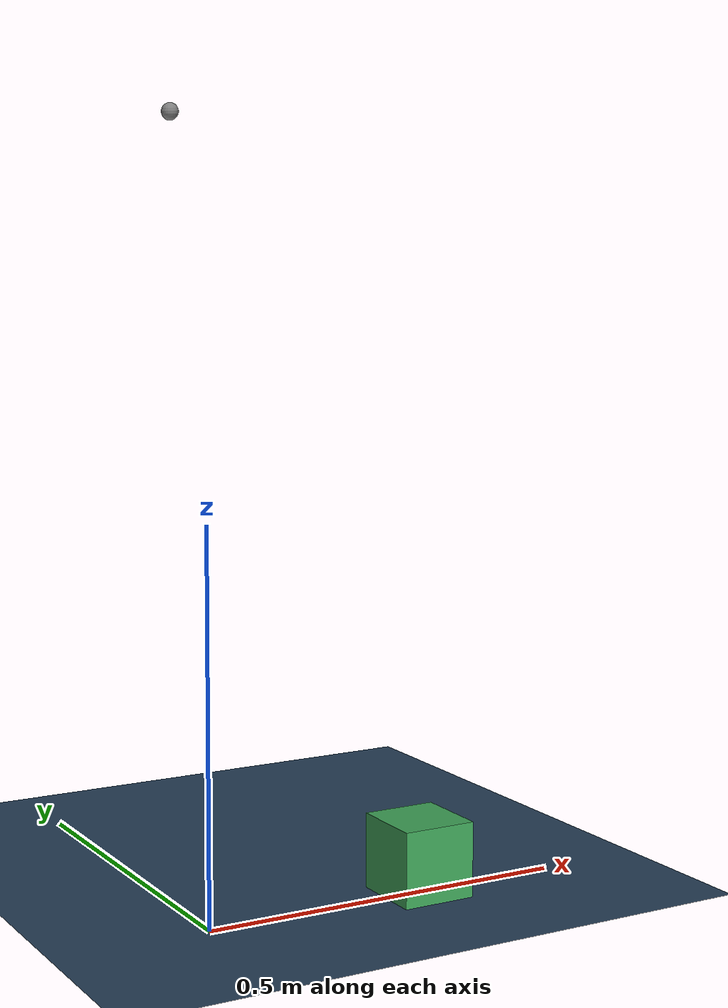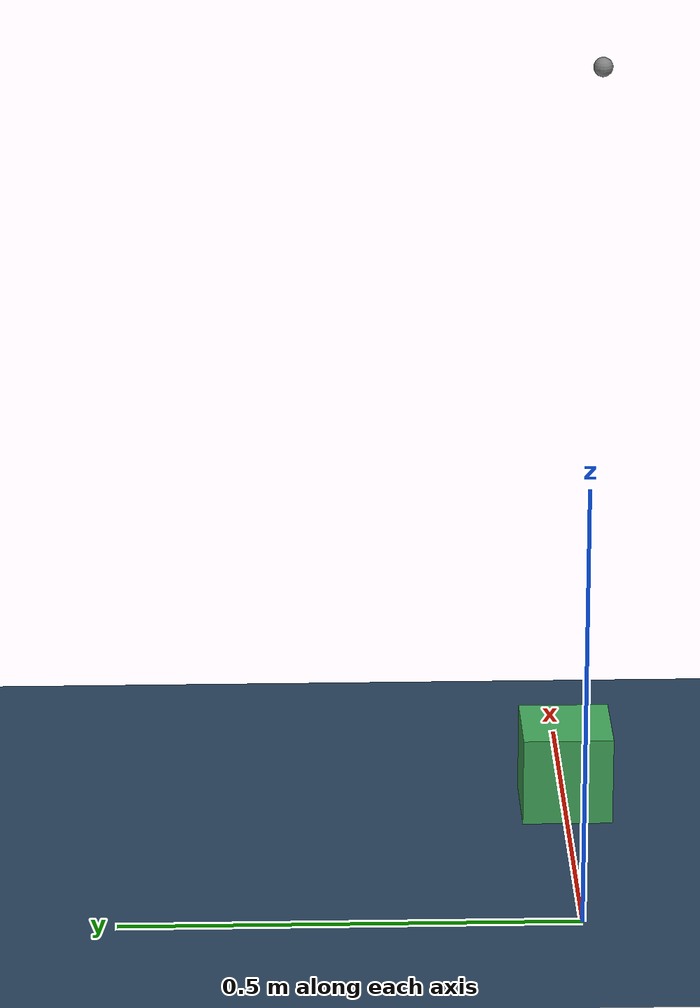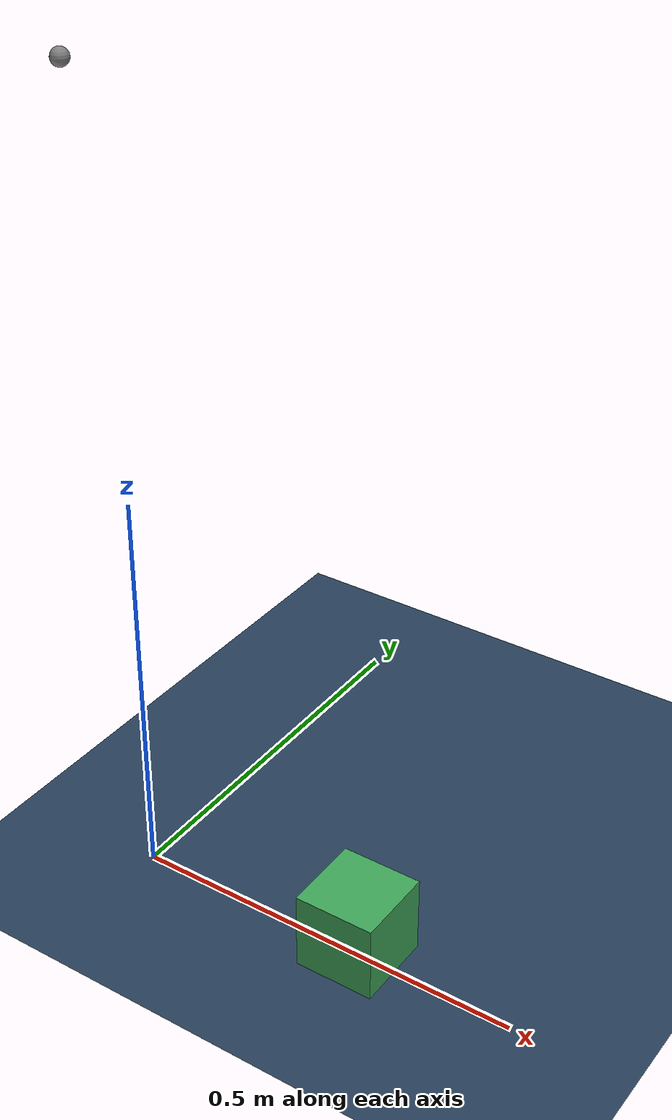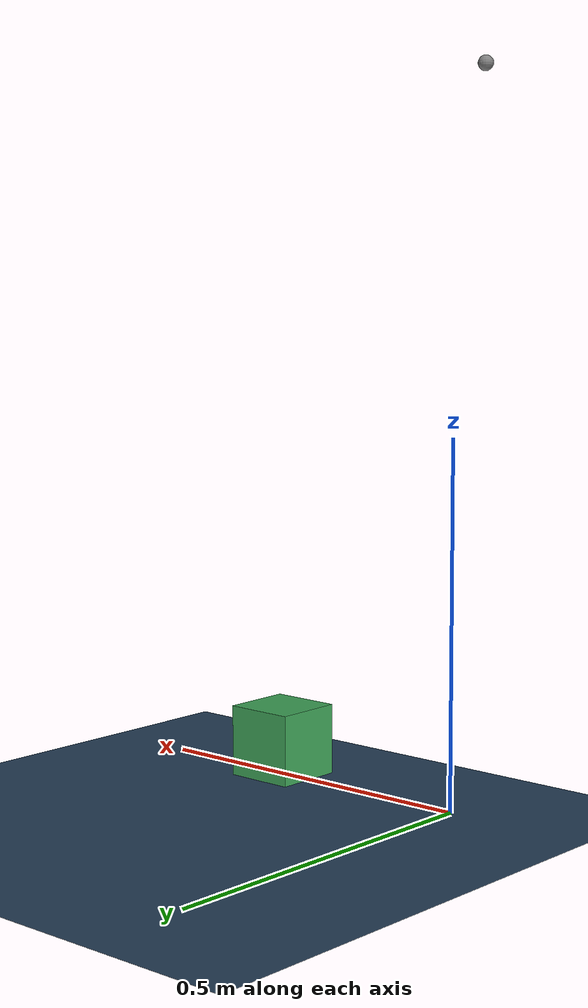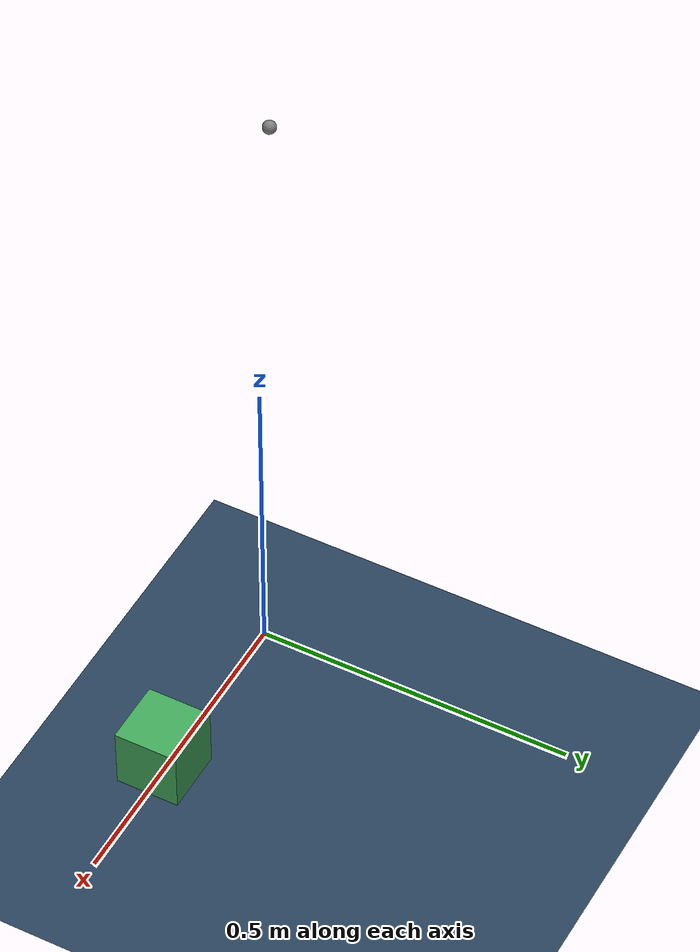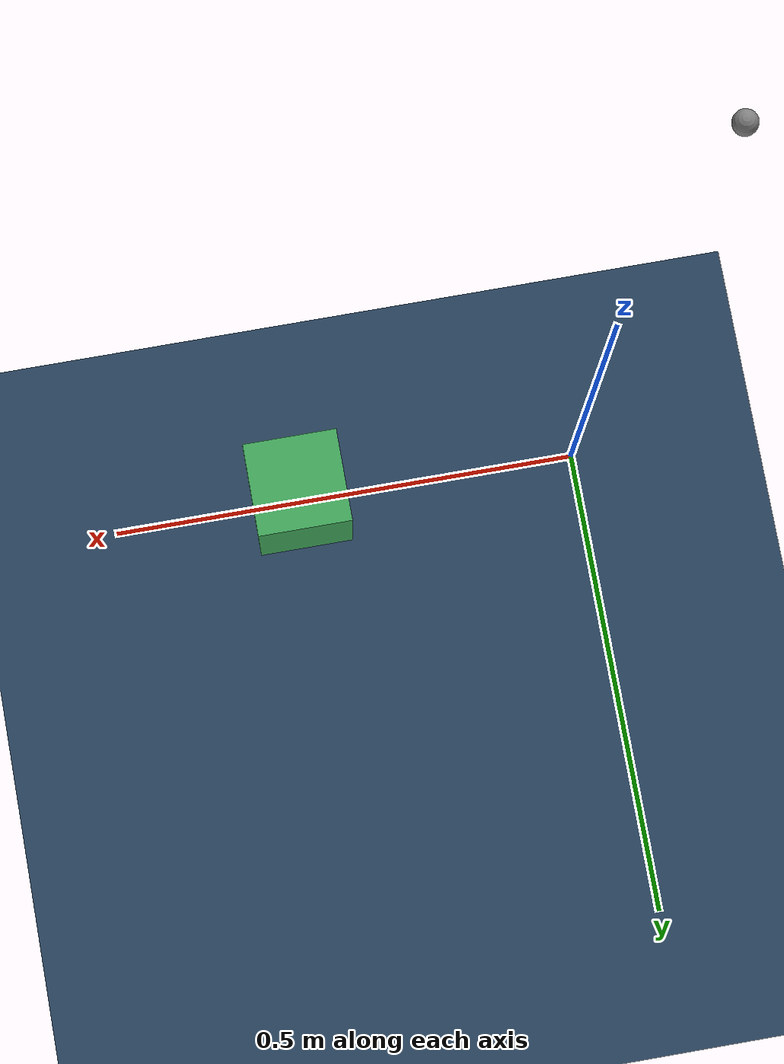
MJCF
<?xml version="1.0" encoding="utf-8"?>
<mujoco model="robobuddy_g1_29dof_freebase">
  <compiler angle="radian" meshdir="assets" autolimits="true" />
  <option timestep="0.002" integrator="Euler" iterations="100" ls_iterations="50" />
  <default>
    <default class="g1_motor">
      <joint armature="0.01" damping="0.05" frictionloss="0.2" />
    </default>
    <default class="g1_wrist_motor">
      <joint armature="0.01" damping="0.05" frictionloss="0.1" />
    </default>
    <default class="g1_collision">
      <geom group="3" rgba="0.35 0.55 0.75 0.35" />
    </default>
    <default class="g1_foot">
      <geom type="sphere" size="0.005" group="3" rgba="0.9 0.45 0.15 1" />
    </default>
    <default class="robobuddy_fixture">
      <geom group="4" rgba="0.85 0.25 0.25 0.55" contype="0" conaffinity="0" density="0" />
    </default>
  </default>
  <asset>
    <texture type="2d" name="robobuddy_ground" builtin="checker" mark="edge" rgb1="0.2 0.3 0.4" rgb2="0.1 0.2 0.3" markrgb="0.8 0.8 0.8" width="300" height="300" />
    <material name="robobuddy_ground" texture="robobuddy_ground" texuniform="true" texrepeat="5 5" reflectance="0.2" />
    <mesh name="head_link" file="head_link.STL" />
    <mesh name="left_ankle_pitch_link" file="left_ankle_pitch_link.STL" />
    <mesh name="left_elbow_link" file="left_elbow_link.STL" />
    <mesh name="left_hip_pitch_link" file="left_hip_pitch_link.STL" />
    <mesh name="left_hip_roll_link" file="left_hip_roll_link.STL" />
    <mesh name="left_hip_yaw_link" file="left_hip_yaw_link.STL" />
    <mesh name="left_knee_link" file="left_knee_link.STL" />
    <mesh name="left_shoulder_yaw_link" file="left_shoulder_yaw_link.STL" />
    <mesh name="left_wrist_pitch_link" file="left_wrist_pitch_link.STL" />
    <mesh name="left_wrist_roll_link" file="left_wrist_roll_link.STL" />
    <mesh name="left_wrist_yaw_link" file="left_wrist_yaw_link.STL" />
    <mesh name="logo_link" file="logo_link.STL" />
    <mesh name="pelvis_contour_link" file="pelvis_contour_link.STL" />
    <mesh name="right_ankle_pitch_link" file="right_ankle_pitch_link.STL" />
    <mesh name="right_elbow_link" file="right_elbow_link.STL" />
    <mesh name="right_hip_pitch_link" file="right_hip_pitch_link.STL" />
    <mesh name="right_hip_roll_link" file="right_hip_roll_link.STL" />
    <mesh name="right_hip_yaw_link" file="right_hip_yaw_link.STL" />
    <mesh name="right_knee_link" file="right_knee_link.STL" />
    <mesh name="right_shoulder_yaw_link" file="right_shoulder_yaw_link.STL" />
    <mesh name="right_wrist_pitch_link" file="right_wrist_pitch_link.STL" />
    <mesh name="right_wrist_roll_link" file="right_wrist_roll_link.STL" />
    <mesh name="right_wrist_yaw_link" file="right_wrist_yaw_link.STL" />
    <mesh name="torso_link" file="torso_link.STL" />
    <mesh name="waist_support_link" file="waist_support_link.STL" />
  </asset>
  <worldbody>
    <light pos="0 0 3" dir="0 0 -1" directional="true" />
    <geom name="floor" type="plane" size="0 0 0.05" material="robobuddy_ground" />
    <body name="pelvis" pos="0 0 0.7842">
      <inertial pos="0 0 -0.07605" quat="1 0 -0.000399148 0" mass="3.813" diaginertia="0.010549 0.0093089 0.0079184" />
      <joint name="floating_base_joint" type="free" limited="false" actuatorfrclimited="false" />
      <geom type="mesh" mesh="pelvis_contour_link" class="g1_collision" name="pelvis_hull" />
      <body name="left_hip_pitch_link" pos="0 0.064452 -0.1027">
        <inertial pos="0.002741 0.047791 -0.02606" quat="0.954862 0.293964 0.0302556 0.030122" mass="1.35" diaginertia="0.00181517 0.00153422 0.00116212" />
        <joint name="left_hip_pitch_joint" pos="0 0 0" axis="0 1 0" range="-2.5307 2.8798" actuatorfrcrange="-88 88" class="g1_motor" />
        <geom type="mesh" mesh="left_hip_pitch_link" class="g1_collision" name="left_hip_pitch_link_hull" />
        <body name="left_hip_roll_link" pos="0 0.052 -0.030465" quat="0.996179 0 -0.0873386 0">
          <inertial pos="0.029812 -0.001045 -0.087934" quat="0.977808 -1.97119e-05 0.205576 -0.0403793" mass="1.52" diaginertia="0.00254986 0.00241169 0.00148755" />
          <joint name="left_hip_roll_joint" pos="0 0 0" axis="1 0 0" range="-0.5236 2.9671" actuatorfrcrange="-88 88" class="g1_motor" />
          <geom type="mesh" mesh="left_hip_roll_link" class="g1_collision" name="left_hip_roll_link_hull" />
          <body name="left_hip_yaw_link" pos="0.025001 0 -0.12412">
            <inertial pos="-0.057709 -0.010981 -0.15078" quat="0.600598 0.15832 0.223482 0.751181" mass="1.702" diaginertia="0.00776166 0.00717575 0.00160139" />
            <joint name="left_hip_yaw_joint" pos="0 0 0" axis="0 0 1" range="-2.7576 2.7576" actuatorfrcrange="-88 88" class="g1_motor" />
            <geom type="mesh" mesh="left_hip_yaw_link" class="g1_collision" name="left_hip_yaw_link_hull" />
            <body name="left_knee_link" pos="-0.078273 0.0021489 -0.17734" quat="0.996179 0 0.0873386 0">
              <inertial pos="0.005457 0.003964 -0.12074" quat="0.923418 -0.0327699 0.0158246 0.382067" mass="1.932" diaginertia="0.0113804 0.0112778 0.00146458" />
              <joint name="left_knee_joint" pos="0 0 0" axis="0 1 0" range="-0.087267 2.8798" actuatorfrcrange="-139 139" class="g1_motor" />
              <geom type="mesh" mesh="left_knee_link" class="g1_collision" name="left_knee_link_hull" />
              <body name="left_ankle_pitch_link" pos="0 -9.4445e-05 -0.30001">
                <inertial pos="-0.007269 0 0.011137" quat="0.603053 0.369225 0.369225 0.603053" mass="0.074" diaginertia="1.89e-05 1.40805e-05 6.9195e-06" />
                <joint name="left_ankle_pitch_joint" pos="0 0 0" axis="0 1 0" range="-0.87267 0.5236" actuatorfrcrange="-50 50" class="g1_motor" />
                <geom type="mesh" mesh="left_ankle_pitch_link" class="g1_collision" name="left_ankle_pitch_link_hull" />
                <body name="left_ankle_roll_link" pos="0 0 -0.017558">
                  <inertial pos="0.026505 0 -0.016425" quat="-0.000481092 0.728482 -0.000618967 0.685065" mass="0.608" diaginertia="0.00167218 0.0016161 0.000217621" />
                  <joint name="left_ankle_roll_joint" pos="0 0 0" axis="1 0 0" range="-0.2618 0.2618" actuatorfrcrange="-50 50" class="g1_motor" />
                  <geom pos="-0.05 0.025 -0.03" class="g1_foot" name="left_foot_heel_lateral" />
                  <geom pos="-0.05 -0.025 -0.03" class="g1_foot" name="left_foot_heel_medial" />
                  <geom pos="0.12 0.03 -0.03" class="g1_foot" name="left_foot_toe_lateral" />
                  <geom pos="0.12 -0.03 -0.03" class="g1_foot" name="left_foot_toe_medial" />
                </body>
              </body>
            </body>
          </body>
        </body>
      </body>
      <body name="right_hip_pitch_link" pos="0 -0.064452 -0.1027">
        <inertial pos="0.002741 -0.047791 -0.02606" quat="0.954862 -0.293964 0.0302556 -0.030122" mass="1.35" diaginertia="0.00181517 0.00153422 0.00116212" />
        <joint name="right_hip_pitch_joint" pos="0 0 0" axis="0 1 0" range="-2.5307 2.8798" actuatorfrcrange="-88 88" class="g1_motor" />
        <geom type="mesh" mesh="right_hip_pitch_link" class="g1_collision" name="right_hip_pitch_link_hull" />
        <body name="right_hip_roll_link" pos="0 -0.052 -0.030465" quat="0.996179 0 -0.0873386 0">
          <inertial pos="0.029812 0.001045 -0.087934" quat="0.977808 1.97119e-05 0.205576 0.0403793" mass="1.52" diaginertia="0.00254986 0.00241169 0.00148755" />
          <joint name="right_hip_roll_joint" pos="0 0 0" axis="1 0 0" range="-2.9671 0.5236" actuatorfrcrange="-88 88" class="g1_motor" />
          <geom type="mesh" mesh="right_hip_roll_link" class="g1_collision" name="right_hip_roll_link_hull" />
          <body name="right_hip_yaw_link" pos="0.025001 0 -0.12412">
            <inertial pos="-0.057709 0.010981 -0.15078" quat="0.751181 0.223482 0.15832 0.600598" mass="1.702" diaginertia="0.00776166 0.00717575 0.00160139" />
            <joint name="right_hip_yaw_joint" pos="0 0 0" axis="0 0 1" range="-2.7576 2.7576" actuatorfrcrange="-88 88" class="g1_motor" />
            <geom type="mesh" mesh="right_hip_yaw_link" class="g1_collision" name="right_hip_yaw_link_hull" />
            <body name="right_knee_link" pos="-0.078273 -0.0021489 -0.17734" quat="0.996179 0 0.0873386 0">
              <inertial pos="0.005457 -0.003964 -0.12074" quat="0.923439 0.0345276 0.0116333 -0.382012" mass="1.932" diaginertia="0.011374 0.0112843 0.00146452" />
              <joint name="right_knee_joint" pos="0 0 0" axis="0 1 0" range="-0.087267 2.8798" actuatorfrcrange="-139 139" class="g1_motor" />
              <geom type="mesh" mesh="right_knee_link" class="g1_collision" name="right_knee_link_hull" />
              <body name="right_ankle_pitch_link" pos="0 9.4445e-05 -0.30001">
                <inertial pos="-0.007269 0 0.011137" quat="0.603053 0.369225 0.369225 0.603053" mass="0.074" diaginertia="1.89e-05 1.40805e-05 6.9195e-06" />
                <joint name="right_ankle_pitch_joint" pos="0 0 0" axis="0 1 0" range="-0.87267 0.5236" actuatorfrcrange="-50 50" class="g1_motor" />
                <geom type="mesh" mesh="right_ankle_pitch_link" class="g1_collision" name="right_ankle_pitch_link_hull" />
                <body name="right_ankle_roll_link" pos="0 0 -0.017558">
                  <inertial pos="0.026505 0 -0.016425" quat="0.000481092 0.728482 0.000618967 0.685065" mass="0.608" diaginertia="0.00167218 0.0016161 0.000217621" />
                  <joint name="right_ankle_roll_joint" pos="0 0 0" axis="1 0 0" range="-0.2618 0.2618" actuatorfrcrange="-50 50" class="g1_motor" />
                  <geom pos="-0.05 0.025 -0.03" class="g1_foot" name="right_foot_heel_lateral" />
                  <geom pos="-0.05 -0.025 -0.03" class="g1_foot" name="right_foot_heel_medial" />
                  <geom pos="0.12 0.03 -0.03" class="g1_foot" name="right_foot_toe_lateral" />
                  <geom pos="0.12 -0.03 -0.03" class="g1_foot" name="right_foot_toe_medial" />
                </body>
              </body>
            </body>
          </body>
        </body>
      </body>
      <body name="waist_yaw_link">
        <inertial pos="0.003964 0 0.018769" quat="-0.0178291 0.628464 0.0282471 0.777121" mass="0.244" diaginertia="0.000158561 0.000124229 9.67669e-05" />
        <joint name="waist_yaw_joint" pos="0 0 0" axis="0 0 1" range="-2.618 2.618" actuatorfrcrange="-88 88" class="g1_motor" />
        <body name="waist_roll_link" pos="-0.0039635 0 0.035">
          <inertial pos="0 -0.000236 0.010111" quat="0.99979 0.020492 0 0" mass="0.047" diaginertia="7.515e-06 6.40206e-06 3.98394e-06" />
          <joint name="waist_roll_joint" pos="0 0 0" axis="1 0 0" range="-0.52 0.52" actuatorfrcrange="-50 50" class="g1_motor" />
          <body name="torso_link" pos="0 0 0.019">
            <inertial pos="0.00331658 0.000261533 0.179856" quat="0.999831 0.000376204 0.0179895 -0.00377704" mass="9.598" diaginertia="0.12407 0.111951 0.0325382" />
            <joint name="waist_pitch_joint" pos="0 0 0" axis="0 1 0" range="-0.52 0.52" actuatorfrcrange="-50 50" class="g1_motor" />
            <site name="imu" size="0.01" pos="-0.03959 -0.00224 0.13792" />
            <geom type="mesh" mesh="torso_link" class="g1_collision" name="torso_link_hull" />
            <geom pos="0.0039635 0 -0.054" quat="1 0 0 0" type="mesh" mesh="logo_link" class="g1_collision" name="torso_link_hull1" />
            <geom pos="0.0039635 0 -0.054" type="mesh" mesh="head_link" class="g1_collision" name="torso_link_hull2" />
            <geom pos="0.0039635 0 -0.054" quat="1 0 0 0" type="mesh" mesh="waist_support_link" class="g1_collision" name="torso_link_hull3" />
            <body name="left_shoulder_pitch_link" pos="0.0039563 0.10022 0.23778" quat="0.990264 0.139201 1.38722e-05 -9.86868e-05">
              <inertial pos="0 0.035892 -0.011628" quat="0.654152 0.0130458 -0.326267 0.68225" mass="0.718" diaginertia="0.000465864 0.000432842 0.000406394" />
              <joint name="left_shoulder_pitch_joint" pos="0 0 0" axis="0 1 0" range="-3.0892 2.6704" actuatorfrcrange="-25 25" class="g1_motor" />
              <geom size="0.03 0.025" pos="0 0.04 -0.01" quat="0.707107 0 0.707107 0" type="cylinder" class="g1_collision" name="left_shoulder_pitch_link_cyl" />
              <body name="left_shoulder_roll_link" pos="0 0.038 -0.013831" quat="0.990268 -0.139172 0 0">
                <inertial pos="-0.000227 0.00727 -0.063243" quat="0.701256 -0.0196223 -0.00710317 0.712604" mass="0.643" diaginertia="0.000691311 0.000618011 0.000388977" />
                <joint name="left_shoulder_roll_joint" pos="0 0 0" axis="1 0 0" range="-1.5882 2.2515" actuatorfrcrange="-25 25" class="g1_motor" />
                <geom size="0.03 0.015" pos="-0.004 0.006 -0.053" type="cylinder" class="g1_collision" name="left_shoulder_roll_link_cyl" />
                <body name="left_shoulder_yaw_link" pos="0 0.00624 -0.1032">
                  <inertial pos="0.010773 -0.002949 -0.072009" quat="0.716879 -0.0964829 -0.0679942 0.687134" mass="0.734" diaginertia="0.00106187 0.00103217 0.000400661" />
                  <joint name="left_shoulder_yaw_joint" pos="0 0 0" axis="0 0 1" range="-2.618 2.618" actuatorfrcrange="-25 25" class="g1_motor" />
                  <geom type="mesh" mesh="left_shoulder_yaw_link" class="g1_collision" name="left_shoulder_yaw_link_hull" />
                  <body name="left_elbow_link" pos="0.015783 0 -0.080518">
                    <inertial pos="0.064956 0.004454 -0.010062" quat="0.541765 0.636132 0.388821 0.388129" mass="0.6" diaginertia="0.000443035 0.000421612 0.000259353" />
                    <joint name="left_elbow_joint" pos="0 0 0" axis="0 1 0" range="-1.0472 2.0944" actuatorfrcrange="-25 25" class="g1_motor" />
                    <geom type="mesh" mesh="left_elbow_link" class="g1_collision" name="left_elbow_link_hull" />
                    <body name="left_wrist_roll_link" pos="0.1 0.00188791 -0.01">
                      <inertial pos="0.0171394 0.000537591 4.8864e-07" quat="0.575338 0.411667 -0.574906 0.411094" mass="0.085445" diaginertia="5.48211e-05 4.96646e-05 3.57798e-05" />
                      <joint name="left_wrist_roll_joint" pos="0 0 0" axis="1 0 0" range="-1.97222 1.97222" actuatorfrcrange="-25 25" class="g1_motor" />
                      <geom type="mesh" mesh="left_wrist_roll_link" class="g1_collision" name="left_wrist_roll_link_hull" />
                      <body name="left_wrist_pitch_link" pos="0.038 0 0">
                        <inertial pos="0.0229999 -0.00111685 -0.00111658" quat="0.249998 0.661363 0.293036 0.643608" mass="0.48405" diaginertia="0.000430353 0.000429873 0.000164648" />
                        <joint name="left_wrist_pitch_joint" pos="0 0 0" axis="0 1 0" range="-1.61443 1.61443" actuatorfrcrange="-5 5" class="g1_wrist_motor" />
                        <geom type="mesh" mesh="left_wrist_pitch_link" class="g1_collision" name="left_wrist_pitch_link_hull" />
                        <body name="left_wrist_yaw_link" pos="0.046 0 0">
                          <inertial pos="0.0708244 0.000191745 0.00161742" quat="0.510571 0.526295 0.468078 0.493188" mass="0.254576" diaginertia="0.000646113 0.000559993 0.000147566" />
                          <joint name="left_wrist_yaw_joint" pos="0 0 0" axis="0 0 1" range="-1.61443 1.61443" actuatorfrcrange="-5 5" class="g1_wrist_motor" />
                          <geom type="mesh" mesh="left_wrist_yaw_link" class="g1_collision" name="left_wrist_yaw_link_hull" />
                        </body>
                      </body>
                    </body>
                  </body>
                </body>
              </body>
            </body>
            <body name="right_shoulder_pitch_link" pos="0.0039563 -0.10021 0.23778" quat="0.990264 -0.139201 1.38722e-05 9.86868e-05">
              <inertial pos="0 -0.035892 -0.011628" quat="0.68225 -0.326267 0.0130458 0.654152" mass="0.718" diaginertia="0.000465864 0.000432842 0.000406394" />
              <joint name="right_shoulder_pitch_joint" pos="0 0 0" axis="0 1 0" range="-3.0892 2.6704" actuatorfrcrange="-25 25" class="g1_motor" />
              <geom size="0.03 0.025" pos="0 -0.04 -0.01" quat="0.707107 0 0.707107 0" type="cylinder" class="g1_collision" name="right_shoulder_pitch_link_cyl" />
              <body name="right_shoulder_roll_link" pos="0 -0.038 -0.013831" quat="0.990268 0.139172 0 0">
                <inertial pos="-0.000227 -0.00727 -0.063243" quat="0.712604 -0.00710317 -0.0196223 0.701256" mass="0.643" diaginertia="0.000691311 0.000618011 0.000388977" />
                <joint name="right_shoulder_roll_joint" pos="0 0 0" axis="1 0 0" range="-2.2515 1.5882" actuatorfrcrange="-25 25" class="g1_motor" />
                <geom size="0.03 0.015" pos="-0.004 -0.006 -0.053" type="cylinder" class="g1_collision" name="right_shoulder_roll_link_cyl" />
                <body name="right_shoulder_yaw_link" pos="0 -0.00624 -0.1032">
                  <inertial pos="0.010773 0.002949 -0.072009" quat="0.687134 -0.0679942 -0.0964829 0.716879" mass="0.734" diaginertia="0.00106187 0.00103217 0.000400661" />
                  <joint name="right_shoulder_yaw_joint" pos="0 0 0" axis="0 0 1" range="-2.618 2.618" actuatorfrcrange="-25 25" class="g1_motor" />
                  <geom type="mesh" mesh="right_shoulder_yaw_link" class="g1_collision" name="right_shoulder_yaw_link_hull" />
                  <body name="right_elbow_link" pos="0.015783 0 -0.080518">
                    <inertial pos="0.064956 -0.004454 -0.010062" quat="0.388129 0.388821 0.636132 0.541765" mass="0.6" diaginertia="0.000443035 0.000421612 0.000259353" />
                    <joint name="right_elbow_joint" pos="0 0 0" axis="0 1 0" range="-1.0472 2.0944" actuatorfrcrange="-25 25" class="g1_motor" />
                    <geom type="mesh" mesh="right_elbow_link" class="g1_collision" name="right_elbow_link_hull" />
                    <body name="right_wrist_roll_link" pos="0.1 -0.00188791 -0.01">
                      <inertial pos="0.0171394 -0.000537591 4.8864e-07" quat="0.411667 0.575338 -0.411094 0.574906" mass="0.085445" diaginertia="5.48211e-05 4.96646e-05 3.57798e-05" />
                      <joint name="right_wrist_roll_joint" pos="0 0 0" axis="1 0 0" range="-1.97222 1.97222" actuatorfrcrange="-25 25" class="g1_motor" />
                      <geom type="mesh" mesh="right_wrist_roll_link" class="g1_collision" name="right_wrist_roll_link_hull" />
                      <body name="right_wrist_pitch_link" pos="0.038 0 0">
                        <inertial pos="0.0229999 0.00111685 -0.00111658" quat="0.643608 0.293036 0.661363 0.249998" mass="0.48405" diaginertia="0.000430353 0.000429873 0.000164648" />
                        <joint name="right_wrist_pitch_joint" pos="0 0 0" axis="0 1 0" range="-1.61443 1.61443" actuatorfrcrange="-5 5" class="g1_wrist_motor" />
                        <geom type="mesh" mesh="right_wrist_pitch_link" class="g1_collision" name="right_wrist_pitch_link_hull" />
                        <body name="right_wrist_yaw_link" pos="0.046 0 0">
                          <inertial pos="0.0708244 -0.000191745 0.00161742" quat="0.493188 0.468078 0.526295 0.510571" mass="0.254576" diaginertia="0.000646113 0.000559993 0.000147566" />
                          <joint name="right_wrist_yaw_joint" pos="0 0 0" axis="0 0 1" range="-1.61443 1.61443" actuatorfrcrange="-5 5" class="g1_wrist_motor" />
                          <geom type="mesh" mesh="right_wrist_yaw_link" class="g1_collision" name="right_wrist_yaw_link_hull" />
                        </body>
                      </body>
                    </body>
                  </body>
                </body>
              </body>
            </body>
          </body>
        </body>
      </body>
    </body>
    <body name="contact_probe_block" pos="0.3 0 0.05">
      <freejoint name="contact_probe_block_free" />
      <geom name="contact_probe_block_geom" type="box" size="0.05 0.05 0.05" mass="0.4" friction="0.8 0.005 0.0001" rgba="0.25 0.65 0.35 1" />
    </body>
  </worldbody>
  <contact>
    <exclude name="exclude_torso_link__left_shoulder_roll_link" body1="torso_link" body2="left_shoulder_roll_link" />
    <exclude name="exclude_torso_link__right_shoulder_roll_link" body1="torso_link" body2="right_shoulder_roll_link" />
    <exclude name="exclude_left_wrist_roll_link__left_wrist_yaw_link" body1="left_wrist_roll_link" body2="left_wrist_yaw_link" />
    <exclude name="exclude_right_wrist_roll_link__right_wrist_yaw_link" body1="right_wrist_roll_link" body2="right_wrist_yaw_link" />
  </contact>
  <actuator>
    <motor name="left_hip_pitch_joint" joint="left_hip_pitch_joint" ctrlrange="-88 88" />
    <motor name="left_hip_roll_joint" joint="left_hip_roll_joint" ctrlrange="-88 88" />
    <motor name="left_hip_yaw_joint" joint="left_hip_yaw_joint" ctrlrange="-88 88" />
    <motor name="left_knee_joint" joint="left_knee_joint" ctrlrange="-139 139" />
    <motor name="left_ankle_pitch_joint" joint="left_ankle_pitch_joint" ctrlrange="-50 50" />
    <motor name="left_ankle_roll_joint" joint="left_ankle_roll_joint" ctrlrange="-50 50" />
    <motor name="right_hip_pitch_joint" joint="right_hip_pitch_joint" ctrlrange="-88 88" />
    <motor name="right_hip_roll_joint" joint="right_hip_roll_joint" ctrlrange="-88 88" />
    <motor name="right_hip_yaw_joint" joint="right_hip_yaw_joint" ctrlrange="-88 88" />
    <motor name="right_knee_joint" joint="right_knee_joint" ctrlrange="-139 139" />
    <motor name="right_ankle_pitch_joint" joint="right_ankle_pitch_joint" ctrlrange="-50 50" />
    <motor name="right_ankle_roll_joint" joint="right_ankle_roll_joint" ctrlrange="-50 50" />
    <motor name="waist_yaw_joint" joint="waist_yaw_joint" ctrlrange="-88 88" />
    <motor name="waist_roll_joint" joint="waist_roll_joint" ctrlrange="-50 50" />
    <motor name="waist_pitch_joint" joint="waist_pitch_joint" ctrlrange="-50 50" />
    <motor name="left_shoulder_pitch_joint" joint="left_shoulder_pitch_joint" ctrlrange="-25 25" />
    <motor name="left_shoulder_roll_joint" joint="left_shoulder_roll_joint" ctrlrange="-25 25" />
    <motor name="left_shoulder_yaw_joint" joint="left_shoulder_yaw_joint" ctrlrange="-25 25" />
    <motor name="left_elbow_joint" joint="left_elbow_joint" ctrlrange="-25 25" />
    <motor name="left_wrist_roll_joint" joint="left_wrist_roll_joint" ctrlrange="-25 25" />
    <motor name="left_wrist_pitch_joint" joint="left_wrist_pitch_joint" ctrlrange="-5 5" />
    <motor name="left_wrist_yaw_joint" joint="left_wrist_yaw_joint" ctrlrange="-5 5" />
    <motor name="right_shoulder_pitch_joint" joint="right_shoulder_pitch_joint" ctrlrange="-25 25" />
    <motor name="right_shoulder_roll_joint" joint="right_shoulder_roll_joint" ctrlrange="-25 25" />
    <motor name="right_shoulder_yaw_joint" joint="right_shoulder_yaw_joint" ctrlrange="-25 25" />
    <motor name="right_elbow_joint" joint="right_elbow_joint" ctrlrange="-25 25" />
    <motor name="right_wrist_roll_joint" joint="right_wrist_roll_joint" ctrlrange="-25 25" />
    <motor name="right_wrist_pitch_joint" joint="right_wrist_pitch_joint" ctrlrange="-5 5" />
    <motor name="right_wrist_yaw_joint" joint="right_wrist_yaw_joint" ctrlrange="-5 5" />
  </actuator>
  <sensor>
    <framequat name="imu_quat" objtype="site" objname="imu" />
    <gyro name="imu_gyro" site="imu" />
    <accelerometer name="imu_acc" site="imu" />
  </sensor>
  <keyframe>
    <key name="initial" qpos="0 0 0.7842 1 0 0 0 -0.1 0 0 0.3 -0.2 0 -0.1 0 0 0.3 -0.2 0 0 0 0 0.35 0.18 0 0.87 0 0 0 0.35 -0.18 0 0.87 0 0 0 0.3 0 0.05 1 0 0 0" />
  </keyframe>
</mujoco>
